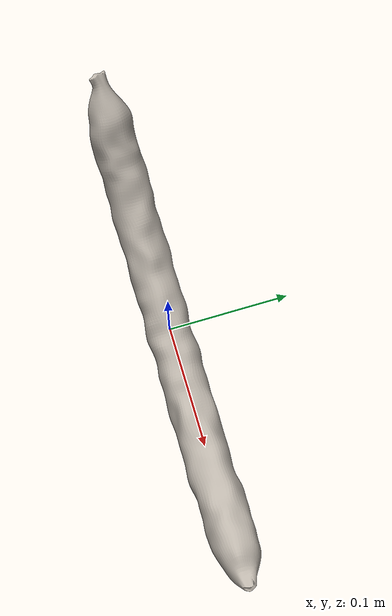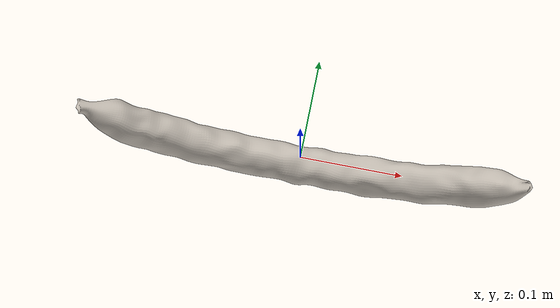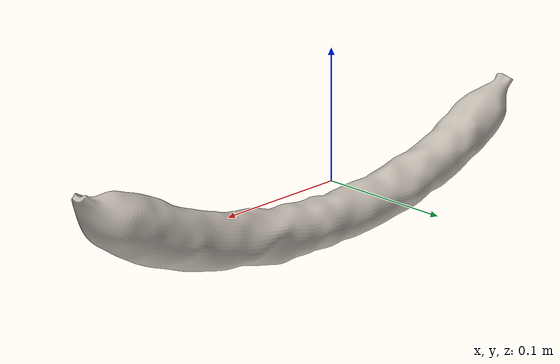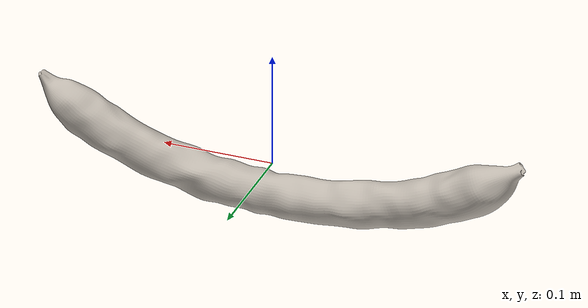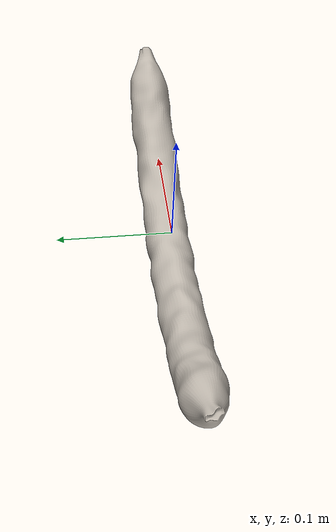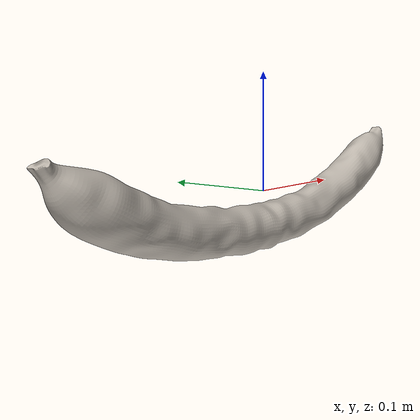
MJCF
<?xml version="1.0" ?>
<mujoco model="long_saussage">
	<compiler meshdir="long_saussage/meshes" texturedir="long_saussage/textures" angle="radian" autolimits="true" balanceinertia="true" boundmass="0.000001" boundinertia="0.000001" inertiafromgeom="false"/>
	<default>
		<default class="visual">
			<geom contype="0" conaffinity="0"/>
		</default>
		<default class="collision">
			<geom rgba="1.0 0.0 0.0 0.0"/>
		</default>
	</default>
	<asset>
		<mesh name="LongSaussage" file="obj/LongSaussage.obj" scale="1.0 1.0 1.0"/>
		<mesh name="LongSaussage_001" file="stl/LongSaussage_001.stl" scale="1.0 1.0 1.0"/>
		<mesh name="LongSaussage_002" file="stl/LongSaussage_002.stl" scale="1.0 1.0 1.0"/>
		<mesh name="LongSaussage_003" file="stl/LongSaussage_003.stl" scale="1.0 1.0 1.0"/>
		<mesh name="LongSaussage_004" file="stl/LongSaussage_004.stl" scale="1.0 1.0 1.0"/>
		<material name="M_LongSaussage" texture="T_LongSaussage"/>
		<texture name="T_LongSaussage" type="2d" file="T_LongSaussage.png"/>
	</asset>
	<worldbody>
		<body name="long_saussage" pos="0.0 0.0 0.0" quat="1.0 0.0 0.0 0.0">
			<inertial mass="0.5017728805541992" pos="0.0008910206379368901 0.00014126165478955954 -0.01130351610481739" quat="0.7078753709793091 -0.706276535987854 -0.006385028827935457 -0.00672185979783535" diaginertia="0.0003000003343913704 0.00727943517267704 0.007491144351661205"/>
			<geom name="LongSaussage" type="mesh" pos="0.0 0.0 0.0" quat="1.0 0.0 0.0 0.0" mesh="LongSaussage" material="M_LongSaussage" class="visual"/>
			<geom name="LongSaussage_001" type="mesh" pos="0.0 0.0 0.0" quat="1.0 0.0 0.0 0.0" mesh="LongSaussage_001" class="collision"/>
			<geom name="LongSaussage_002" type="mesh" pos="0.0 0.0 0.0" quat="1.0 0.0 0.0 0.0" mesh="LongSaussage_002" class="collision"/>
			<geom name="LongSaussage_003" type="mesh" pos="0.0 0.0 0.0" quat="1.0 0.0 0.0 0.0" mesh="LongSaussage_003" class="collision"/>
			<geom name="LongSaussage_004" type="mesh" pos="0.0 0.0 0.0" quat="1.0 0.0 0.0 0.0" mesh="LongSaussage_004" class="collision"/>
		</body>
	</worldbody>
	<equality/>
</mujoco>
